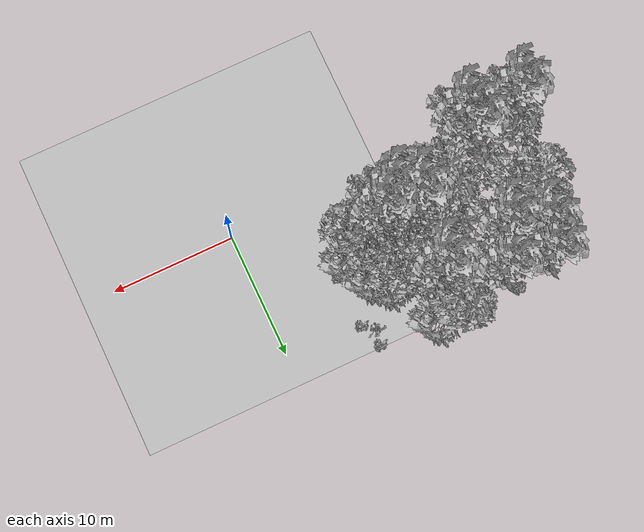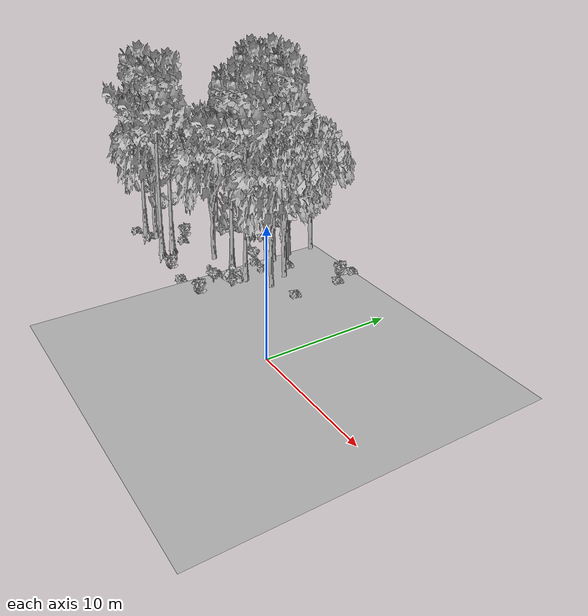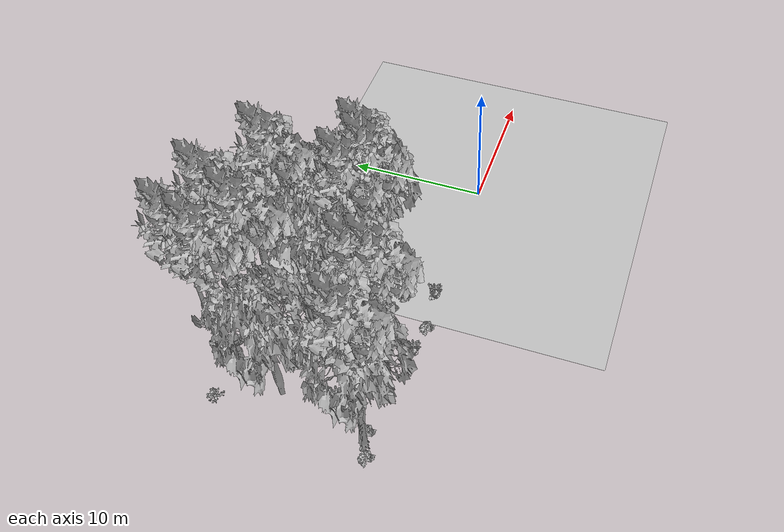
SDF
<sdf version="1.7">
 <world name="default">
  <model name="ground_plane">
   <static>1</static>
   <link name="link">
    <collision name="collision">
     <pose>-50 0 0 0 -0 0</pose>
     <geometry><plane><normal>0 0 1</normal><size>80 80</size></plane></geometry>
     <surface><contact><ode><min_depth>0.01</min_depth><max_vel>0</max_vel></ode></contact></surface>
    </collision>
    <visual name="grass">
     <cast_shadows>0</cast_shadows>
     <geometry>
      <mesh>
       <scale>0.46714285714285714 0.46714285714285714 0.1</scale>
       <uri>file://grass_plane/meshes/grass_plane.dae</uri>
      </mesh>
     </geometry>
    </visual>
   </link>
  </model>
  <model name="Tree 5">
   <static>1</static>
   <pose>-20.84014725361361 7.1038427674684215 0 1.57079 -0 0</pose>
   <link name="link">
    <collision name="collision">
     <geometry><mesh><scale>3.5 5 3.5</scale><uri>model://tree_2/meshes/tree_2.obj</uri></mesh></geometry>
    </collision>
    <visual name="visual">
     <geometry><mesh><scale>3.5 5 3.5</scale><uri>model://tree_2/meshes/tree_2.obj</uri></mesh></geometry>
    </visual>
   </link>
  </model>
  <model name="Tree 63">
   <static>1</static>
   <pose>-8.41310833224652 5.473563548683167 0 1.57079 -0 0</pose>
   <link name="link">
    <collision name="collision">
     <geometry><mesh><scale>3.5 5 3.5</scale><uri>model://tree_2/meshes/tree_2.obj</uri></mesh></geometry>
    </collision>
    <visual name="visual">
     <geometry><mesh><scale>3.5 5 3.5</scale><uri>model://tree_2/meshes/tree_2.obj</uri></mesh></geometry>
    </visual>
   </link>
  </model>
  <model name="Tree 70">
   <static>1</static>
   <pose>-18.371186510951944 0.5092297976657107 0 1.57079 -0 0</pose>
   <link name="link">
    <collision name="collision">
     <geometry><mesh><scale>3.5 5 3.5</scale><uri>model://tree_9/meshes/tree_9.obj</uri></mesh></geometry>
    </collision>
    <visual name="visual">
     <geometry><mesh><scale>3.5 5 3.5</scale><uri>model://tree_9/meshes/tree_9.obj</uri></mesh></geometry>
    </visual>
   </link>
  </model>
  <model name="Tree 77">
   <static>1</static>
   <pose>-9.329620434951472 7.264427089221897 0 1.57079 -0 0</pose>
   <link name="link">
    <collision name="collision">
     <geometry><mesh><scale>3.5 5 3.5</scale><uri>model://tree_2/meshes/tree_2.obj</uri></mesh></geometry>
    </collision>
    <visual name="visual">
     <geometry><mesh><scale>3.5 5 3.5</scale><uri>model://tree_2/meshes/tree_2.obj</uri></mesh></geometry>
    </visual>
   </link>
  </model>
  <model name="Tree 109">
   <static>1</static>
   <pose>-12.34710198294179 9.647558141059093 0 1.57079 -0 0</pose>
   <link name="link">
    <collision name="collision">
     <geometry><mesh><scale>3.5 5 3.5</scale><uri>model://tree_9/meshes/tree_9.obj</uri></mesh></geometry>
    </collision>
    <visual name="visual">
     <geometry><mesh><scale>3.5 5 3.5</scale><uri>model://tree_9/meshes/tree_9.obj</uri></mesh></geometry>
    </visual>
   </link>
  </model>
  <model name="Tree 120">
   <static>1</static>
   <pose>-21.41219973410677 1.2460429099462615 0 1.57079 -0 0</pose>
   <link name="link">
    <collision name="collision">
     <geometry><mesh><scale>3.5 5 3.5</scale><uri>model://tree_2/meshes/tree_2.obj</uri></mesh></geometry>
    </collision>
    <visual name="visual">
     <geometry><mesh><scale>3.5 5 3.5</scale><uri>model://tree_2/meshes/tree_2.obj</uri></mesh></geometry>
    </visual>
   </link>
  </model>
  <model name="Tree 145">
   <static>1</static>
   <pose>-10.279560729979348 4.238795315444193 0 1.57079 -0 0</pose>
   <link name="link">
    <collision name="collision">
     <geometry><mesh><scale>3.5 5 3.5</scale><uri>model://tree_9/meshes/tree_9.obj</uri></mesh></geometry>
    </collision>
    <visual name="visual">
     <geometry><mesh><scale>3.5 5 3.5</scale><uri>model://tree_9/meshes/tree_9.obj</uri></mesh></geometry>
    </visual>
   </link>
  </model>
  <model name="Tree 168">
   <static>1</static>
   <pose>-12.065781518300387 7.937182286494405 0 1.57079 -0 0</pose>
   <link name="link">
    <collision name="collision">
     <geometry><mesh><scale>3.5 5 3.5</scale><uri>model://tree_2/meshes/tree_2.obj</uri></mesh></geometry>
    </collision>
    <visual name="visual">
     <geometry><mesh><scale>3.5 5 3.5</scale><uri>model://tree_2/meshes/tree_2.obj</uri></mesh></geometry>
    </visual>
   </link>
  </model>
  <model name="Tree 179">
   <static>1</static>
   <pose>-17.55327741676592 8.99989369840717 0 1.57079 -0 0</pose>
   <link name="link">
    <collision name="collision">
     <geometry><mesh><scale>3.5 5 3.5</scale><uri>model://tree_9/meshes/tree_9.obj</uri></mesh></geometry>
    </collision>
    <visual name="visual">
     <geometry><mesh><scale>3.5 5 3.5</scale><uri>model://tree_9/meshes/tree_9.obj</uri></mesh></geometry>
    </visual>
   </link>
  </model>
  <model name="Tree 196">
   <static>1</static>
   <pose>-16.251327391616503 11.606805531493443 0 1.57079 -0 0</pose>
   <link name="link">
    <collision name="collision">
     <geometry><mesh><scale>3.5 5 3.5</scale><uri>model://tree_9/meshes/tree_9.obj</uri></mesh></geometry>
    </collision>
    <visual name="visual">
     <geometry><mesh><scale>3.5 5 3.5</scale><uri>model://tree_9/meshes/tree_9.obj</uri></mesh></geometry>
    </visual>
   </link>
  </model>
  <model name="Tree 281">
   <static>1</static>
   <pose>-11.314637268085 3.5896190815997358 0 1.57079 -0 0</pose>
   <link name="link">
    <collision name="collision">
     <geometry><mesh><scale>3.5 5 3.5</scale><uri>model://tree_9/meshes/tree_9.obj</uri></mesh></geometry>
    </collision>
    <visual name="visual">
     <geometry><mesh><scale>3.5 5 3.5</scale><uri>model://tree_9/meshes/tree_9.obj</uri></mesh></geometry>
    </visual>
   </link>
  </model>
  <model name="Tree 285">
   <static>1</static>
   <pose>-10.37910495134781 8.186153560174112 0 1.57079 -0 0</pose>
   <link name="link">
    <collision name="collision">
     <geometry><mesh><scale>3.5 5 3.5</scale><uri>model://tree_2/meshes/tree_2.obj</uri></mesh></geometry>
    </collision>
    <visual name="visual">
     <geometry><mesh><scale>3.5 5 3.5</scale><uri>model://tree_2/meshes/tree_2.obj</uri></mesh></geometry>
    </visual>
   </link>
  </model>
  <model name="Tree 295">
   <static>1</static>
   <pose>-12.434453167599855 11.964894116715882 0 1.57079 -0 0</pose>
   <link name="link">
    <collision name="collision">
     <geometry><mesh><scale>3.5 5 3.5</scale><uri>model://tree_2/meshes/tree_2.obj</uri></mesh></geometry>
    </collision>
    <visual name="visual">
     <geometry><mesh><scale>3.5 5 3.5</scale><uri>model://tree_2/meshes/tree_2.obj</uri></mesh></geometry>
    </visual>
   </link>
  </model>
  <model name="Tree 322">
   <static>1</static>
   <pose>-15.088907638856593 3.818643087064835 0 1.57079 -0 0</pose>
   <link name="link">
    <collision name="collision">
     <geometry><mesh><scale>3.5 5 3.5</scale><uri>model://tree_2/meshes/tree_2.obj</uri></mesh></geometry>
    </collision>
    <visual name="visual">
     <geometry><mesh><scale>3.5 5 3.5</scale><uri>model://tree_2/meshes/tree_2.obj</uri></mesh></geometry>
    </visual>
   </link>
  </model>
  <model name="Tree 376">
   <static>1</static>
   <pose>-18.627350310420525 1.612819092047964 0 1.57079 -0 0</pose>
   <link name="link">
    <collision name="collision">
     <geometry><mesh><scale>3.5 5 3.5</scale><uri>model://tree_9/meshes/tree_9.obj</uri></mesh></geometry>
    </collision>
    <visual name="visual">
     <geometry><mesh><scale>3.5 5 3.5</scale><uri>model://tree_9/meshes/tree_9.obj</uri></mesh></geometry>
    </visual>
   </link>
  </model>
  <model name="Tree 403">
   <static>1</static>
   <pose>-22.465937512709907 0.7376721236538302 0 1.57079 -0 0</pose>
   <link name="link">
    <collision name="collision">
     <geometry><mesh><scale>3.5 5 3.5</scale><uri>model://tree_9/meshes/tree_9.obj</uri></mesh></geometry>
    </collision>
    <visual name="visual">
     <geometry><mesh><scale>3.5 5 3.5</scale><uri>model://tree_9/meshes/tree_9.obj</uri></mesh></geometry>
    </visual>
   </link>
  </model>
  <model name="Tree 495">
   <static>1</static>
   <pose>-12.918624854116906 4.451880222434312 0 1.57079 -0 0</pose>
   <link name="link">
    <collision name="collision">
     <geometry><mesh><scale>3.5 5 3.5</scale><uri>model://tree_9/meshes/tree_9.obj</uri></mesh></geometry>
    </collision>
    <visual name="visual">
     <geometry><mesh><scale>3.5 5 3.5</scale><uri>model://tree_9/meshes/tree_9.obj</uri></mesh></geometry>
    </visual>
   </link>
  </model>
  <model name="Tree 501">
   <static>1</static>
   <pose>-12.575751002133352 7.517342456724528 0 1.57079 -0 0</pose>
   <link name="link">
    <collision name="collision">
     <geometry><mesh><scale>3.5 5 3.5</scale><uri>model://tree_2/meshes/tree_2.obj</uri></mesh></geometry>
    </collision>
    <visual name="visual">
     <geometry><mesh><scale>3.5 5 3.5</scale><uri>model://tree_2/meshes/tree_2.obj</uri></mesh></geometry>
    </visual>
   </link>
  </model>
  <model name="Tree 530">
   <static>1</static>
   <pose>-19.48414409064001 12.033681068647212 0 1.57079 -0 0</pose>
   <link name="link">
    <collision name="collision">
     <geometry><mesh><scale>3.5 5 3.5</scale><uri>model://tree_9/meshes/tree_9.obj</uri></mesh></geometry>
    </collision>
    <visual name="visual">
     <geometry><mesh><scale>3.5 5 3.5</scale><uri>model://tree_9/meshes/tree_9.obj</uri></mesh></geometry>
    </visual>
   </link>
  </model>
  <model name="Tree 625">
   <static>1</static>
   <pose>-19.942268942792644 10.169437532702844 0 1.57079 -0 0</pose>
   <link name="link">
    <collision name="collision">
     <geometry><mesh><scale>3.5 5 3.5</scale><uri>model://tree_9/meshes/tree_9.obj</uri></mesh></geometry>
    </collision>
    <visual name="visual">
     <geometry><mesh><scale>3.5 5 3.5</scale><uri>model://tree_9/meshes/tree_9.obj</uri></mesh></geometry>
    </visual>
   </link>
  </model>
  <model name="Bush 40">
   <static>1</static>
   <pose>-11.35643942236112 1.877233649701715 0 1.57079 -0 0</pose>
   <link name="link">
    <collision name="collision">
     <geometry><mesh><scale>2 2 2</scale><uri>model://bush_0/meshes/bush_0.obj</uri></mesh></geometry>
     <surface><contact><collide_without_contact>false</collide_without_contact></contact></surface>
    </collision>
    <visual name="visual">
     <geometry><mesh><scale>2 2 2</scale><uri>model://bush_0/meshes/bush_0.obj</uri></mesh></geometry>
    </visual>
   </link>
  </model>
  <model name="Bush 83">
   <static>1</static>
   <pose>-19.46534445585211 2.982453328761622 0 1.57079 -0 0</pose>
   <link name="link">
    <collision name="collision">
     <geometry><mesh><scale>2 2 2</scale><uri>model://bush_2/meshes/bush_2.obj</uri></mesh></geometry>
     <surface><contact><collide_without_contact>false</collide_without_contact></contact></surface>
    </collision>
    <visual name="visual">
     <geometry><mesh><scale>2 2 2</scale><uri>model://bush_2/meshes/bush_2.obj</uri></mesh></geometry>
    </visual>
   </link>
  </model>
  <model name="Bush 123">
   <static>1</static>
   <pose>-11.113262117423002 6.303637137678521 0 1.57079 -0 0</pose>
   <link name="link">
    <collision name="collision">
     <geometry><mesh><scale>2 2 2</scale><uri>model://bush_2/meshes/bush_2.obj</uri></mesh></geometry>
     <surface><contact><collide_without_contact>false</collide_without_contact></contact></surface>
    </collision>
    <visual name="visual">
     <geometry><mesh><scale>2 2 2</scale><uri>model://bush_2/meshes/bush_2.obj</uri></mesh></geometry>
    </visual>
   </link>
  </model>
  <model name="Bush 141">
   <static>1</static>
   <pose>-10.002826679588189 2.7690932098706185 0 1.57079 -0 0</pose>
   <link name="link">
    <collision name="collision">
     <geometry><mesh><scale>2 2 2</scale><uri>model://bush_1/meshes/bush_1.obj</uri></mesh></geometry>
     <surface><contact><collide_without_contact>false</collide_without_contact></contact></surface>
    </collision>
    <visual name="visual">
     <geometry><mesh><scale>2 2 2</scale><uri>model://bush_1/meshes/bush_1.obj</uri></mesh></geometry>
    </visual>
   </link>
  </model>
  <model name="Bush 144">
   <static>1</static>
   <pose>-20.235100250792154 3.478183127742625 0 1.57079 -0 0</pose>
   <link name="link">
    <collision name="collision">
     <geometry><mesh><scale>2 2 2</scale><uri>model://bush_4/meshes/bush_4.obj</uri></mesh></geometry>
     <surface><contact><collide_without_contact>false</collide_without_contact></contact></surface>
    </collision>
    <visual name="visual">
     <geometry><mesh><scale>2 2 2</scale><uri>model://bush_4/meshes/bush_4.obj</uri></mesh></geometry>
    </visual>
   </link>
  </model>
  <model name="Bush 167">
   <static>1</static>
   <pose>-18.25038471698389 12.879501007795241 0 1.57079 -0 0</pose>
   <link name="link">
    <collision name="collision">
     <geometry><mesh><scale>2 2 2</scale><uri>model://bush_5/meshes/bush_5.obj</uri></mesh></geometry>
     <surface><contact><collide_without_contact>false</collide_without_contact></contact></surface>
    </collision>
    <visual name="visual">
     <geometry><mesh><scale>2 2 2</scale><uri>model://bush_5/meshes/bush_5.obj</uri></mesh></geometry>
    </visual>
   </link>
  </model>
  <model name="Bush 168">
   <static>1</static>
   <pose>-6.178581604533129 6.315994069571353 0 1.57079 -0 0</pose>
   <link name="link">
    <collision name="collision">
     <geometry><mesh><scale>2 2 2</scale><uri>model://bush_2/meshes/bush_2.obj</uri></mesh></geometry>
     <surface><contact><collide_without_contact>false</collide_without_contact></contact></surface>
    </collision>
    <visual name="visual">
     <geometry><mesh><scale>2 2 2</scale><uri>model://bush_2/meshes/bush_2.obj</uri></mesh></geometry>
    </visual>
   </link>
  </model>
  <model name="Bush 225">
   <static>1</static>
   <pose>-10.395654840045136 0.010214156105050165 0 1.57079 -0 0</pose>
   <link name="link">
    <collision name="collision">
     <geometry><mesh><scale>2 2 2</scale><uri>model://bush_4/meshes/bush_4.obj</uri></mesh></geometry>
     <surface><contact><collide_without_contact>false</collide_without_contact></contact></surface>
    </collision>
    <visual name="visual">
     <geometry><mesh><scale>2 2 2</scale><uri>model://bush_4/meshes/bush_4.obj</uri></mesh></geometry>
    </visual>
   </link>
  </model>
  <model name="Bush 235">
   <static>1</static>
   <pose>-18.13393144969471 11.737888164031972 0 1.57079 -0 0</pose>
   <link name="link">
    <collision name="collision">
     <geometry><mesh><scale>2 2 2</scale><uri>model://bush_2/meshes/bush_2.obj</uri></mesh></geometry>
     <surface><contact><collide_without_contact>false</collide_without_contact></contact></surface>
    </collision>
    <visual name="visual">
     <geometry><mesh><scale>2 2 2</scale><uri>model://bush_2/meshes/bush_2.obj</uri></mesh></geometry>
    </visual>
   </link>
  </model>
  <model name="Bush 282">
   <static>1</static>
   <pose>-18.674167423662087 6.447686521275848 0 1.57079 -0 0</pose>
   <link name="link">
    <collision name="collision">
     <geometry><mesh><scale>2 2 2</scale><uri>model://bush_1/meshes/bush_1.obj</uri></mesh></geometry>
     <surface><contact><collide_without_contact>false</collide_without_contact></contact></surface>
    </collision>
    <visual name="visual">
     <geometry><mesh><scale>2 2 2</scale><uri>model://bush_1/meshes/bush_1.obj</uri></mesh></geometry>
    </visual>
   </link>
  </model>
  <model name="Bush 310">
   <static>1</static>
   <pose>-6.917293610159351 12.378519258591695 0 1.57079 -0 0</pose>
   <link name="link">
    <collision name="collision">
     <geometry><mesh><scale>2 2 2</scale><uri>model://bush_2/meshes/bush_2.obj</uri></mesh></geometry>
     <surface><contact><collide_without_contact>false</collide_without_contact></contact></surface>
    </collision>
    <visual name="visual">
     <geometry><mesh><scale>2 2 2</scale><uri>model://bush_2/meshes/bush_2.obj</uri></mesh></geometry>
    </visual>
   </link>
  </model>
  <model name="Bush 325">
   <static>1</static>
   <pose>-22.734816349583042 10.876341058978255 0 1.57079 -0 0</pose>
   <link name="link">
    <collision name="collision">
     <geometry><mesh><scale>2 2 2</scale><uri>model://bush_5/meshes/bush_5.obj</uri></mesh></geometry>
     <surface><contact><collide_without_contact>false</collide_without_contact></contact></surface>
    </collision>
    <visual name="visual">
     <geometry><mesh><scale>2 2 2</scale><uri>model://bush_5/meshes/bush_5.obj</uri></mesh></geometry>
    </visual>
   </link>
  </model>
  <model name="Bush 341">
   <static>1</static>
   <pose>-12.297758417275308 2.640220651823114 0 1.57079 -0 0</pose>
   <link name="link">
    <collision name="collision">
     <geometry><mesh><scale>2 2 2</scale><uri>model://bush_2/meshes/bush_2.obj</uri></mesh></geometry>
     <surface><contact><collide_without_contact>false</collide_without_contact></contact></surface>
    </collision>
    <visual name="visual">
     <geometry><mesh><scale>2 2 2</scale><uri>model://bush_2/meshes/bush_2.obj</uri></mesh></geometry>
    </visual>
   </link>
  </model>
  <model name="Bush 345">
   <static>1</static>
   <pose>-15.326825692023817 -0.11550157669093153 0 1.57079 -0 0</pose>
   <link name="link">
    <collision name="collision">
     <geometry><mesh><scale>2 2 2</scale><uri>model://bush_4/meshes/bush_4.obj</uri></mesh></geometry>
     <surface><contact><collide_without_contact>false</collide_without_contact></contact></surface>
    </collision>
    <visual name="visual">
     <geometry><mesh><scale>2 2 2</scale><uri>model://bush_4/meshes/bush_4.obj</uri></mesh></geometry>
    </visual>
   </link>
  </model>
  <model name="Bush 353">
   <static>1</static>
   <pose>-7.0789503891858345 11.208309057897054 0 1.57079 -0 0</pose>
   <link name="link">
    <collision name="collision">
     <geometry><mesh><scale>2 2 2</scale><uri>model://bush_4/meshes/bush_4.obj</uri></mesh></geometry>
     <surface><contact><collide_without_contact>false</collide_without_contact></contact></surface>
    </collision>
    <visual name="visual">
     <geometry><mesh><scale>2 2 2</scale><uri>model://bush_4/meshes/bush_4.obj</uri></mesh></geometry>
    </visual>
   </link>
  </model>
  <model name="Bush 394">
   <static>1</static>
   <pose>-16.259993734656412 9.342031109140294 0 1.57079 -0 0</pose>
   <link name="link">
    <collision name="collision">
     <geometry><mesh><scale>2 2 2</scale><uri>model://bush_2/meshes/bush_2.obj</uri></mesh></geometry>
     <surface><contact><collide_without_contact>false</collide_without_contact></contact></surface>
    </collision>
    <visual name="visual">
     <geometry><mesh><scale>2 2 2</scale><uri>model://bush_2/meshes/bush_2.obj</uri></mesh></geometry>
    </visual>
   </link>
  </model>
  <model name="Bush 410">
   <static>1</static>
   <pose>-10.540722768980146 8.474195458579842 0 1.57079 -0 0</pose>
   <link name="link">
    <collision name="collision">
     <geometry><mesh><scale>2 2 2</scale><uri>model://bush_2/meshes/bush_2.obj</uri></mesh></geometry>
     <surface><contact><collide_without_contact>false</collide_without_contact></contact></surface>
    </collision>
    <visual name="visual">
     <geometry><mesh><scale>2 2 2</scale><uri>model://bush_2/meshes/bush_2.obj</uri></mesh></geometry>
    </visual>
   </link>
  </model>
  <model name="Bush 417">
   <static>1</static>
   <pose>-12.88125547296363 6.490501475025816 0 1.57079 -0 0</pose>
   <link name="link">
    <collision name="collision">
     <geometry><mesh><scale>2 2 2</scale><uri>model://bush_0/meshes/bush_0.obj</uri></mesh></geometry>
     <surface><contact><collide_without_contact>false</collide_without_contact></contact></surface>
    </collision>
    <visual name="visual">
     <geometry><mesh><scale>2 2 2</scale><uri>model://bush_0/meshes/bush_0.obj</uri></mesh></geometry>
    </visual>
   </link>
  </model>
  <model name="Bush 440">
   <static>1</static>
   <pose>-18.566710545833093 12.956136765378105 0 1.57079 -0 0</pose>
   <link name="link">
    <collision name="collision">
     <geometry><mesh><scale>2 2 2</scale><uri>model://bush_2/meshes/bush_2.obj</uri></mesh></geometry>
     <surface><contact><collide_without_contact>false</collide_without_contact></contact></surface>
    </collision>
    <visual name="visual">
     <geometry><mesh><scale>2 2 2</scale><uri>model://bush_2/meshes/bush_2.obj</uri></mesh></geometry>
    </visual>
   </link>
  </model>
  <model name="Bush 460">
   <static>1</static>
   <pose>-12.451584478488336 6.371625638758481 0 1.57079 -0 0</pose>
   <link name="link">
    <collision name="collision">
     <geometry><mesh><scale>2 2 2</scale><uri>model://bush_2/meshes/bush_2.obj</uri></mesh></geometry>
     <surface><contact><collide_without_contact>false</collide_without_contact></contact></surface>
    </collision>
    <visual name="visual">
     <geometry><mesh><scale>2 2 2</scale><uri>model://bush_2/meshes/bush_2.obj</uri></mesh></geometry>
    </visual>
   </link>
  </model>
  <model name="Bush 489">
   <static>1</static>
   <pose>-21.807439523229633 0.7612539288377107 0 1.57079 -0 0</pose>
   <link name="link">
    <collision name="collision">
     <geometry><mesh><scale>2 2 2</scale><uri>model://bush_2/meshes/bush_2.obj</uri></mesh></geometry>
     <surface><contact><collide_without_contact>false</collide_without_contact></contact></surface>
    </collision>
    <visual name="visual">
     <geometry><mesh><scale>2 2 2</scale><uri>model://bush_2/meshes/bush_2.obj</uri></mesh></geometry>
    </visual>
   </link>
  </model>
  <model name="Bush 500">
   <static>1</static>
   <pose>-23.466763449879075 0.20312511847586023 0 1.57079 -0 0</pose>
   <link name="link">
    <collision name="collision">
     <geometry><mesh><scale>2 2 2</scale><uri>model://bush_2/meshes/bush_2.obj</uri></mesh></geometry>
     <surface><contact><collide_without_contact>false</collide_without_contact></contact></surface>
    </collision>
    <visual name="visual">
     <geometry><mesh><scale>2 2 2</scale><uri>model://bush_2/meshes/bush_2.obj</uri></mesh></geometry>
    </visual>
   </link>
  </model>
  <model name="Bush 514">
   <static>1</static>
   <pose>-13.105760960379204 -0.24763690959721885 0 1.57079 -0 0</pose>
   <link name="link">
    <collision name="collision">
     <geometry><mesh><scale>2 2 2</scale><uri>model://bush_2/meshes/bush_2.obj</uri></mesh></geometry>
     <surface><contact><collide_without_contact>false</collide_without_contact></contact></surface>
    </collision>
    <visual name="visual">
     <geometry><mesh><scale>2 2 2</scale><uri>model://bush_2/meshes/bush_2.obj</uri></mesh></geometry>
    </visual>
   </link>
  </model>
  <model name="Bush 519">
   <static>1</static>
   <pose>-6.230388646212113 10.465247030130001 0 1.57079 -0 0</pose>
   <link name="link">
    <collision name="collision">
     <geometry><mesh><scale>2 2 2</scale><uri>model://bush_2/meshes/bush_2.obj</uri></mesh></geometry>
     <surface><contact><collide_without_contact>false</collide_without_contact></contact></surface>
    </collision>
    <visual name="visual">
     <geometry><mesh><scale>2 2 2</scale><uri>model://bush_2/meshes/bush_2.obj</uri></mesh></geometry>
    </visual>
   </link>
  </model>
  <model name="Bush 588">
   <static>1</static>
   <pose>-13.150675303114099 8.271809143953703 0 1.57079 -0 0</pose>
   <link name="link">
    <collision name="collision">
     <geometry><mesh><scale>2 2 2</scale><uri>model://bush_2/meshes/bush_2.obj</uri></mesh></geometry>
     <surface><contact><collide_without_contact>false</collide_without_contact></contact></surface>
    </collision>
    <visual name="visual">
     <geometry><mesh><scale>2 2 2</scale><uri>model://bush_2/meshes/bush_2.obj</uri></mesh></geometry>
    </visual>
   </link>
  </model>
 </world>
</sdf>
